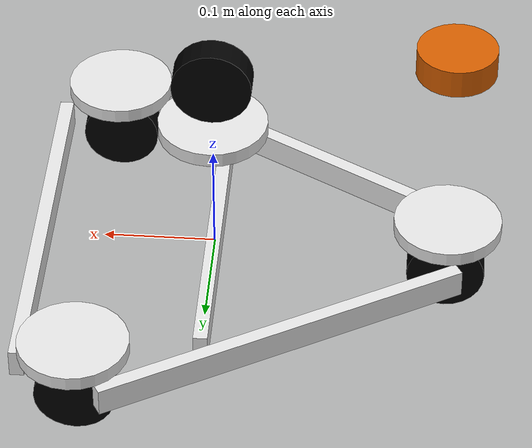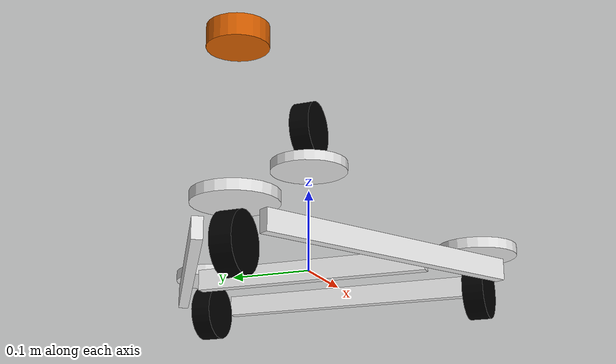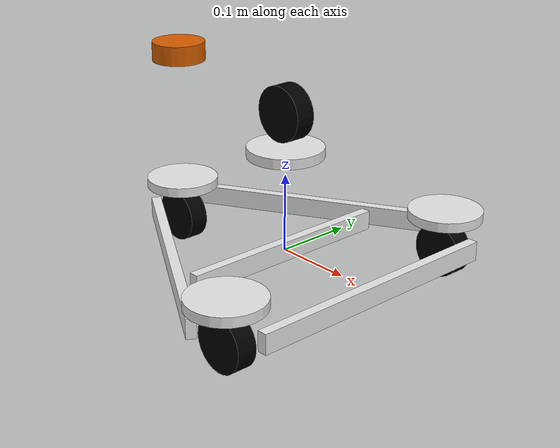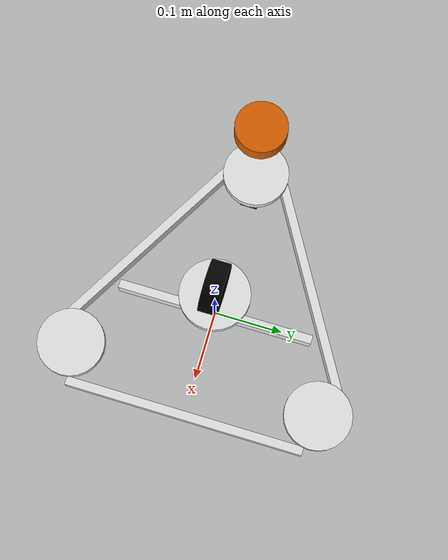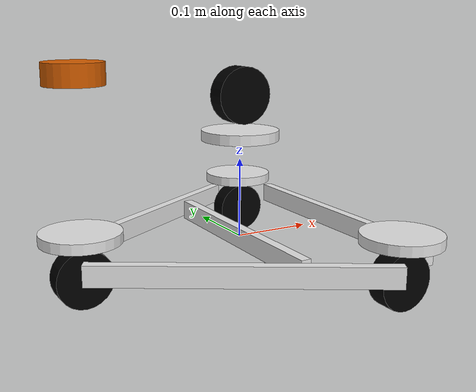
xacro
<?xml version="1.0"?>
<robot name="ghost1" xmlns:xacro="http://ros.org/wiki/xacro">

    <xacro:include filename="$(find ghost_sim)/urdf/macros/actuator_macros.xacro"/>
    <xacro:include filename="$(find ghost_sim)/urdf/macros/sensor_macros.xacro"/>

    <!-- Import Primary Robot URDF -->
    <xacro:include filename="$(find ghost_over_under)/urdf/ghost1.xacro"/>

    <!-- Add Sensors -->

    <!-- Joint State Publisher -->
    <gazebo>
        <plugin name="v5_robot_plugin" filename="libv5_robot_plugin.so">
            <joint_names>
                steering_joint_left
                steering_joint_right
                steering_joint_back
                wheel_joint_left
                wheel_joint_right
                wheel_joint_back
                steering_top_test
                wheel_top_test
            </joint_names>
            <!-- Motor names must be formatted in this manner in order to index actuator jacobian -->
            <motor_names>
                DRIVE_LEFT_FRONT_LEFT_MOTOR
                DRIVE_LEFT_FRONT_RIGHT_MOTOR
                DRIVE_RIGHT_FRONT_LEFT_MOTOR
                DRIVE_RIGHT_FRONT_RIGHT_MOTOR
                DRIVE_LEFT_BACK_LEFT_MOTOR
                DRIVE_LEFT_BACK_RIGHT_MOTOR
                DRIVE_RIGHT_BACK_LEFT_MOTOR
                DRIVE_RIGHT_BACK_RIGHT_MOTOR
            </motor_names>

            <encoder_names>
                STEERING_LEFT_ENCODER
                STEERING_RIGHT_ENCODER
                STEERING_BACK_ENCODER
            </encoder_names>

            <!-- System Jacobians -->
                <!-- To describe the relationship between motors/encoders and robot joints in a universal way, we encode them -->
                <!-- as matrices which relate the vector of motor/encoder speeds to joint speeds. We can also take a pseudo-inverse -->
                <!-- to relate torques. Examples are included below. -->

                <!-- Example 1 -->
                    <!--         motor_1 motor_2    -->
                    <!-- joint_1    1       0       -->
                    <!-- joint_2    0       1       -->

                    <!-- Both joints are directly driven by their respective motors, and their velocites and torques match. -->

                <!-- Example 2 -->
                <!--          motor_1   motor_2  motor_3    -->
                    <!-- joint_1    0.5       0.5       0       -->
                    <!-- joint_2     0         0        2       -->

                    <!-- joint_1 is driven by motor_1 and motor_2. It moves at the average of the two motor velocites, and with -->
                    <!-- the torque of both motors added together. This represents two motors attached to the same system -->
                    <!-- joint_2 moves twice as fast as motor_3, representing an external gear reduction on the motor -->

                <!-- In general, describe the way the velocities are related and the torque relationship will be extracted inside the plugin -->

            <!-- This matrix describes the relationship between motor velocities and joint velocities -->
            <!-- Width = # Motors, Height = # Joints -->
            <actuator_jacobian>
                0.144     0.144       0           0           0           0           0           0
                0         0           0.144       0.144       0           0           0           0
                0         0           0           0           0.144       0.144       0           0
                0.361     -0.361      0           0           0           0           0           0
                0         0           0.361     -0.361        0           0           0           0
                0         0           0           0           0.361     -0.361        0           0
                0         0           0           0           0           0           0           0
                0         0           0           0           0           0           0           0
            </actuator_jacobian>

            <!-- This matrix describes the relationship between the encoders and the joints -->
            <!-- This encoder matrix does not include encoders within motors. The relation ship between motor encoders and
            joints is defined in the actuator_jacobian -->
            <!-- Width = # Encoders, Height = # Joints -->
            <sensor_jacobian>
            1 0 0
            0 1 0
            0 0 1
            0 0 0
            0 0 0
            0 0 0
            0 0 0
            0 0 0
            </sensor_jacobian>
        </plugin>
    </gazebo>
</robot>

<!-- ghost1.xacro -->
<robot name="ghost1" xmlns:xacro="http://ros.org/wiki/xacro">

    <xacro:include filename="$(find ghost_swerve)/urdf/swerve_macros.xacro"/>

    <xacro:property name="dist_to_wheel" value="0.2286"/> <!-- 9" center to wheel modules-->
    <xacro:property name="r_wheel" value="0.034925"/> <!-- 1.375" wheel radius-->
    <xacro:property name="width_wheel" value="0.0254"/> <!-- 1" wheel width-->
    <xacro:property name="com_radius" value="0.02"/>
    <xacro:property name="d2r" value="${3.14159/180}"/>

    <link name="base_link">
        <visual>
        <origin xyz="0 0 0" rpy="0 0 0"/>
        <geometry>
            <box size="0.0127 0.29 0.0254"/>
        </geometry>
            <material name="silver">
                <color rgba="0.9 0.9 0.9 1.0"/>
            </material>
        </visual>

        <!--Inertia estimated for solid cylinder of radius 9" and height 3" with mass 7kg-->
        <inertial>
            <origin xyz="0 0 0" rpy="0 0 0"/>
            <mass value="10"/>
            <inertia
                ixx="0.094839" ixy="0.0" ixz="0.0"
                iyy="0.094839" iyz="0.0"
                izz="0.182903"/>
        </inertial>

        <gazebo>
            <maxVel>3.0</maxVel>
        </gazebo>
    </link>

    <link name="base_footprint">
        <inertial>
            <origin xyz="0 0 0" rpy="0 0 0"/>
            <mass value="0.00001"/>
            <inertia
                ixx="0.00001" ixy="0.0" ixz="0.0"
                iyy="0.00001" iyz="0.0"
                izz="0.00001"/>
        </inertial>
    </link>

    <joint name="base_footprint_joint" type="fixed">
        <parent link="base_link"/>
        <child link="base_footprint"/>
        <origin xyz="0 0 -0.052585" rpy="0 0 0"/>
        <axis xyz="0 0 1"/>
    </joint>

    <link name="front_bar">
        <visual>
        <origin xyz="0 0 0" rpy="0 0 0"/>
        <geometry>
            <box size="0.0127 0.35 0.0254"/>
        </geometry>
            <material name="silver">
                <color rgba="0.9 0.9 0.9 1.0"/>
            </material>
        </visual>
    </link>

    <joint name="front_bar_joint" type="fixed">
        <parent link="base_link"/>
        <child link="front_bar"/>
        <origin xyz="0.156 0 0" rpy="0 0 0"/>
        <axis xyz="0 0 1"/>
    </joint>

    <link name="left_bar">
        <visual>
        <origin xyz="0 0 0" rpy="0 0 0"/>
        <geometry>
            <box size="0.0127 0.35 0.0254"/>
        </geometry>
            <material name="silver">
                <color rgba="0.9 0.9 0.9 1.0"/>
            </material>
        </visual>
    </link>

    <joint name="left_bar_joint" type="fixed">
        <parent link="base_link"/>
        <child link="left_bar"/>
        <origin xyz="-0.069 0.125 0" rpy="0 0 -1.0471"/>
        <axis xyz="0 0 1"/>
    </joint>

    <link name="right_bar">
        <visual>
        <origin xyz="0 0 0" rpy="0 0 0"/>
        <geometry>
            <box size="0.0127 0.35 0.0254"/>
        </geometry>
            <material name="silver">
                <color rgba="0.9 0.9 0.9 1.0"/>
            </material>
    </visual>
    </link>

    <joint name="right_bar_joint" type="fixed">
        <parent link="base_link"/>
        <child link="right_bar"/>
        <origin xyz="-0.069 -0.125 0" rpy="0 0 1.0471"/>
        <axis xyz="0 0 1"/>
    </joint>

    <!-- Steering Modules -->
    <xacro:steering_macro id="left"></xacro:steering_macro>
    <xacro:steering_macro id="right"></xacro:steering_macro>
    <xacro:steering_macro id="back"></xacro:steering_macro>
    <xacro:steering_macro id="top_test"></xacro:steering_macro>

    <!-- Wheel Modules -->
    <xacro:wheel_macro id="left" r_wheel="${r_wheel}" width_wheel="${width_wheel}" collision_factor="8"></xacro:wheel_macro>
    <xacro:wheel_macro id="right" r_wheel="${r_wheel}" width_wheel="${width_wheel}" collision_factor="8"></xacro:wheel_macro>
    <xacro:wheel_macro id="back" r_wheel="${r_wheel}" width_wheel="${width_wheel}" collision_factor="8"></xacro:wheel_macro>
    <xacro:wheel_macro id="top_test" r_wheel="${r_wheel}" width_wheel="${width_wheel}" collision_factor="8"></xacro:wheel_macro>

    <!-- Joints -->
    <joint name="steering_joint_left" type="continuous">
        <parent link="base_link"/>
        <child link="steering_link_left"/>
        <origin xyz="0.10452 0.180975 0.0812" rpy="0 0 0"/>
        <dynamics damping="0.0" friction="0.0"/>
        <axis xyz="0 0 1"/>
    </joint>

    <joint name="steering_joint_right" type="continuous">
        <parent link="base_link"/>
        <child link="steering_link_right"/>
        <origin xyz="0.10452 -0.180975 0.0812" rpy="0 0 0"/>
        <dynamics damping="0.0" friction="0.0"/>
        <axis xyz="0 0 1"/>
    </joint>

    <joint name="steering_joint_back" type="continuous">
        <parent link="base_link"/>
        <child link="steering_link_back"/>
        <origin xyz="-0.209 0.0 0.0812" rpy="0 0 0"/>
        <dynamics damping="0.0" friction="0.0"/>
        <axis xyz="0 0 1"/>
    </joint>

    <joint name="steering_top_test" type="continuous">
        <parent link="base_link"/>
        <child link="steering_link_top_test"/>
        <origin xyz="0 0 0.0812" rpy="${180*d2r} 0 0"/>
        <dynamics damping="0.0" friction="0.0"/>
        <axis xyz="0 0 1"/>
    </joint>

    <joint name="wheel_joint_left" type="continuous">
        <parent link="steering_link_left"/>
        <child link="wheel_link_left"/>
        <origin xyz="0 0 -0.09886" rpy="${90*d2r} 0 0"/>
        <dynamics damping="0.0" friction="0.0"/>
        <axis xyz="0 0 1"/>
    </joint>

    <joint name="wheel_joint_right" type="continuous">
        <parent link="steering_link_right"/>
        <child link="wheel_link_right"/>
        <origin xyz="0 0 -0.09886" rpy="${90*d2r} 0 0"/>
        <dynamics damping="0.0" friction="0.0"/>
        <axis xyz="0 0 1"/>
    </joint>

    <joint name="wheel_joint_back" type="continuous">
        <parent link="steering_link_back"/>
        <child link="wheel_link_back"/>
        <origin xyz="0 0 -0.09886" rpy="${90*d2r} 0 0"/>
        <dynamics damping="0.0" friction="0.0"/>
        <axis xyz="0 0 1"/>
    </joint>

    <joint name="wheel_top_test" type="continuous">
        <parent link="steering_link_top_test"/>
        <child link="wheel_link_top_test"/>
        <origin xyz="0 0 -0.09886" rpy="${90*d2r} 0 0"/>
        <dynamics damping="0.0" friction="0.0"/>
        <axis xyz="0 0 0"/>
    </joint>
    <!-- Sensors -->
    <link name="lidar_link">
        <inertial>
            <origin xyz="0.0 0 0.0" rpy="0 0 0"/>
            <mass value="0.125"/>
            <inertia ixx="0.001"  ixy="0"  ixz="0" iyy="0.001" iyz="0" izz="0.001" />
        </inertial>

        <visual>
            <origin xyz="0 0 0" rpy="0 0 0"/>
            <geometry>
            <cylinder radius="${0.06985/2}" length="0.0254"/>
            </geometry>
        </visual>
    </link>

    <joint name="lidar_joint" type="fixed">
        <parent link="base_link"/>
        <child link="lidar_link"/>
        <origin xyz="-0.209 0 0.2145" rpy="0 0 ${67.562*d2r}"/>
    </joint>

</robot>

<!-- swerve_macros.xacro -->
<robot xmlns:xacro="http://www.ros.org/wiki/xacro">
    <!-- Steering Module Macro -->
    <xacro:macro name="steering_macro" params="id">
    <link name="steering_link_${id}">
        <inertial>
            <origin xyz="0 0 0" rpy="0 0 0"/>
            <mass value="0.4545"/>
            <inertia
                ixx="0.000975" ixy="0.0" ixz="0.0"
                iyy="0.000975" iyz="0.0"
                izz="0.001902"/>
        </inertial>
        <visual>
            <origin xyz="0 0 -0.05" rpy="0 0 0"/>
            <geometry>
                <cylinder radius="0.04826" length="0.0127"/>
            </geometry>
            <material name="silver">
                <color rgba="0.9 0.9 0.9 1.0"/>
            </material>
        </visual>
    </link>
    </xacro:macro>

    <!-- Wheel Macro -->
    <xacro:macro name="wheel_macro" params="id r_wheel width_wheel collision_factor">
    <link name="wheel_link_${id}">
            <visual>
                <geometry>
                    <cylinder radius="${r_wheel}" length="${width_wheel}"/>
                </geometry>
                <material name="black">
                    <color rgba="0 0 0 1.0"/>
                </material>
            </visual>

            <collision>
                <origin xyz="0 0 0" rpy="0 0 0"/>
                <geometry>
                    <cylinder radius="${r_wheel}" length="${width_wheel/collision_factor}"/>
                </geometry>
            </collision>

            <!--Inertia estimated for solid cylinder of radius 2.5" and height 1" with mass 1 lb-->
            <inertial>
                <origin xyz="0 0 0" rpy="0 0 0"/>
                <mass value="0.4545"/>
                <inertia
                    ixx="0.000482" ixy="0.0" ixz="0.0"
                    iyy="0.000482" iyz="0.0"
                    izz="0.000914"/>
            </inertial>
    </link>

    <gazebo reference="wheel_${id}">
        <collision>
            <origin xyz="0 0 0" rpy="0 0 0"/>
            <geometry>
                <cylinder>
                    <radius>${r_wheel}</radius>
                    <length>${width_wheel/collision_factor}</length>
                </cylinder>
            </geometry>

            <surface>
                <friction>
                    <torsional>
                        <coefficient>0.5</coefficient>
                        <patch_radius>0.01</patch_radius>
                    </torsional>
                </friction>
            </surface>
        </collision>

        <material>Gazebo/White</material>
    </gazebo>
    </xacro:macro>
</robot>
